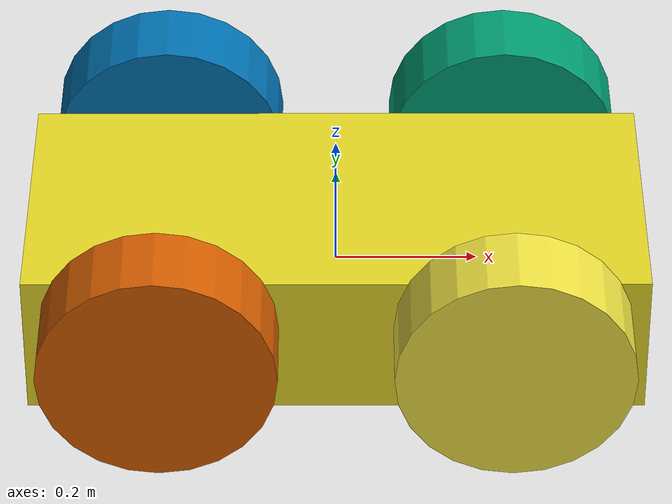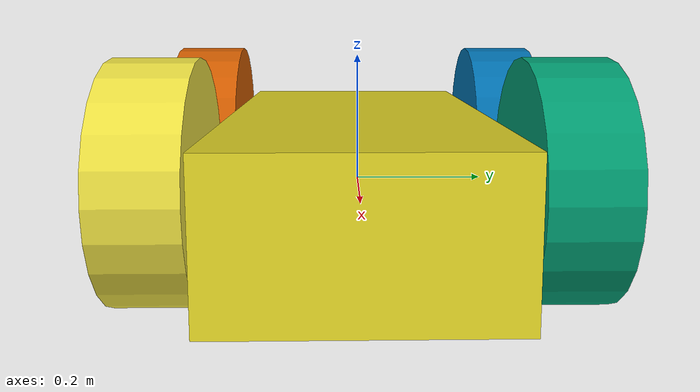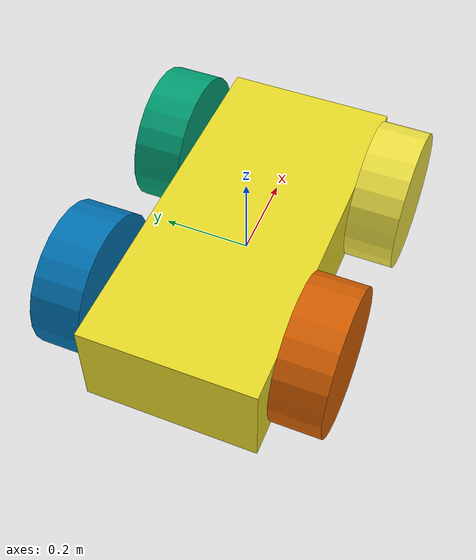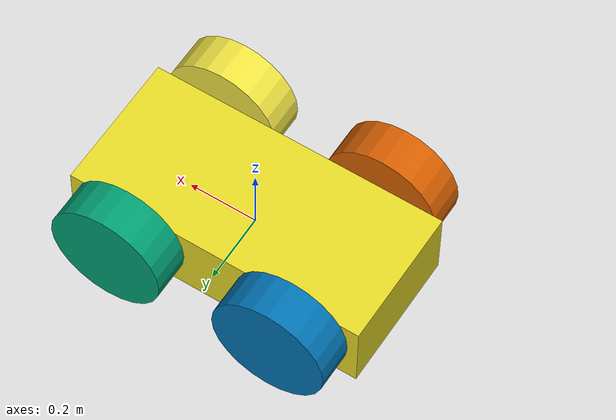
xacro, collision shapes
<?xml version="1.0" encoding="utf-8"?>

<robot xmlns:xacro="http://www.ros.org/wiki/xacro" name="mr1000">

  <xacro:property name="wheel_length" value="0.1143" />
  <xacro:property name="wheel_radius" value="0.1651" />
  <xacro:property name="wheelbase" value="0.4885" /> <!-- distance betwee front wheel and rear wheel -->
  <xacro:property name="track" value="0.5347" />  <!-- separation between left wheel and right wheel: 0.1143 + 0.4204 = 0.5347-->
  <xacro:property name="wheel_vertical_offset" value="0.040" />
  <xacro:property name="base_x_size" value="0.866" />
  <xacro:property name="base_y_size" value="0.400" />
  <xacro:property name="base_z_size" value="0.2165" />
  <xacro:property name="M_PI" value="3.14159"/>

  <xacro:include filename="$(find mr1000)/urdf/wheel.urdf.xacro" />
  <link name="base_link">
    <inertial>
      <origin xyz="0.0083361 0.00033765 0.10648" rpy="0 0 0" />
      <mass value="13.336" />
      <inertia
        ixx="0.12049"
        ixy="0.0"
        ixz="-0.001006"
        iyy="0.0"
        iyz="0.0"
        izz="0.41342" />
    </inertial>
    <visual>
      <origin xyz="0 0 0" rpy="0 0 0" />
      <geometry>
        <mesh filename="package://mr1000/meshes/base_linkm.STL" />
      </geometry>
    </visual>
    <collision>
      <origin xyz="0 0 0" rpy="0 0 0" />
      <geometry>
        <box size="${base_x_size} ${base_y_size} ${base_z_size}"/>
      </geometry>
    </collision>
  </link>
  <gazebo reference="base_link">
    <material>Gazebo/Yellow</material>
  </gazebo>

  <link name="base_footprint"/>

  <joint name="base_footprint_joint" type="fixed">
    <origin xyz="0 0 ${wheel_vertical_offset - wheel_radius}" rpy="0 0 0" />
    <parent link="base_link" />
    <child link="base_footprint" />
  </joint>

  <xacro:mr1000_wheel wheel_prefix="front_left">
    <origin xyz="${wheelbase/2} ${track/2} ${wheel_vertical_offset}" rpy="0 0 0" />
  </xacro:mr1000_wheel>
  <xacro:mr1000_wheel wheel_prefix="front_right">
    <origin xyz="${wheelbase/2} ${-track/2} ${wheel_vertical_offset}" rpy="0 0 0" />
  </xacro:mr1000_wheel>
  <xacro:mr1000_wheel wheel_prefix="rear_left">
    <origin xyz="${-wheelbase/2} ${track/2} ${wheel_vertical_offset}" rpy="0 0 0" />
  </xacro:mr1000_wheel>
  <xacro:mr1000_wheel wheel_prefix="rear_right">
    <origin xyz="${-wheelbase/2} ${-track/2} ${wheel_vertical_offset}" rpy="0 0 0" />
  </xacro:mr1000_wheel>

  <gazebo>
    <plugin name="gazebo_ros_control" filename="libgazebo_ros_control.so">
      <legacyModeNS>true</legacyModeNS>
    </plugin>
  </gazebo>

</robot>

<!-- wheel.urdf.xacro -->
<robot xmlns:xacro="http://ros.org/wiki/xacro" name="mr1000_wheel">

	<xacro:macro name="mr1000_wheel" params="wheel_prefix *joint_pose">
		<link name="${wheel_prefix}_wheel_link">
			<inertial>
				<mass value="2.637" />
				<origin xyz="0 0 0" />
				<inertia  ixx="0.02467" ixy="0" ixz="0" iyy="0.04411" iyz="0" izz="0.02467" />
			</inertial>
			<visual>
				<origin xyz="0 0 0" rpy="${M_PI} 0 0" />
				<geometry>
					<mesh filename="package://mr1000/meshes/wheel.dae" />
				</geometry>
			</visual>
			<collision>
				<origin xyz="0 0 0" rpy="${M_PI/2} 0 0" />
				<geometry>
					<cylinder length="${wheel_length}" radius="${wheel_radius}" />
				</geometry>
			</collision>
		</link>

		<gazebo reference="${wheel_prefix}_wheel_link">
			<mu1 value="1.0"/>
			<mu2 value="0.25"/>
			<kp value="10000000.0" />
			<kd value="1.0" />
			<fdir1 value="1 0 0"/>
		</gazebo>

		<joint name="${wheel_prefix}_wheel" type="continuous">
			<parent link="base_link"/>
			<child link="${wheel_prefix}_wheel_link"/>
			<xacro:insert_block name="joint_pose"/>
			<axis xyz="0 1 0" rpy="0 0 0" />
		</joint>

		<transmission name="${wheel_prefix}_wheel_trans" type="SimpleTransmission">
			<type>transmission_interface/SimpleTransmission</type>
			<actuator name="${wheel_prefix}_wheel_motor">
				<mechanicalReduction>1</mechanicalReduction>
			</actuator>
			<joint name="${wheel_prefix}_wheel">
				<hardwareInterface>hardware_interface/VelocityJointInterface</hardwareInterface>
			</joint>
		</transmission>

	</xacro:macro>
</robot>
